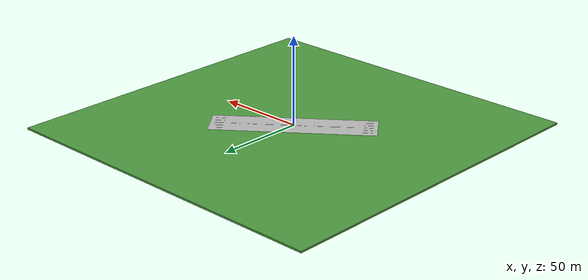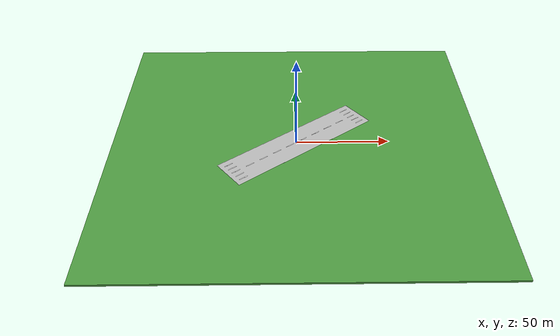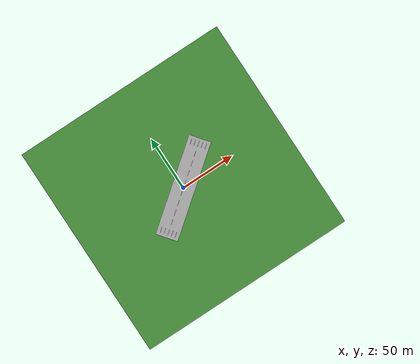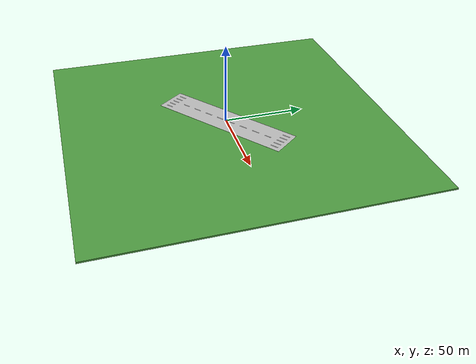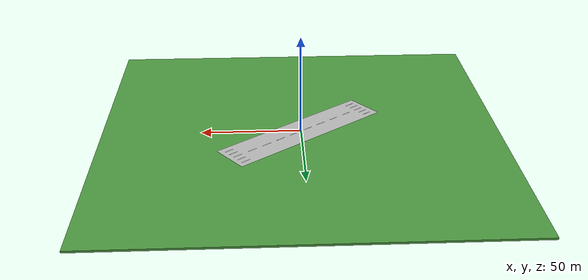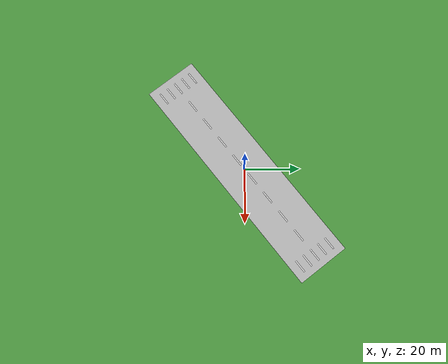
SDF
<?xml version='1.0' ?>
<sdf version='1.6'>
  <world name='default'>
    <light name='sun' type='directional'>
      <cast_shadows>1</cast_shadows>
      <pose>0 0 10 0 0 0</pose>
      <diffuse>0.8 0.8 0.8 1</diffuse>
      <specular>0.1 0.1 0.1 1</specular>
      <attenuation>
        <range>1000</range>
        <constant>0.9</constant>
        <linear>0.01</linear>
        <quadratic>0.001</quadratic>
      </attenuation>
      <direction>-0.5 0.5 -1</direction>
    </light>
    <gravity>0 0 -9.8</gravity>
    <magnetic_field>6e-06 2.3e-05 -4.2e-05</magnetic_field>
    <atmosphere type='adiabatic'/>
    <physics name='default_physics' default='0' type='ode'>
      <max_step_size>0.001</max_step_size>
      <real_time_factor>1</real_time_factor>
      <real_time_update_rate>1000</real_time_update_rate>
    </physics>
    <scene>
      <ambient>0.4 0.4 0.4 1</ambient>
      <background>0.7 0.7 0.7 1</background>
      <shadows>1</shadows>
      <sky>
        <clouds>
          <speed>8</speed>
        </clouds>
      </sky>
      <grid>0</grid>
    </scene>
    <spherical_coordinates>
      <surface_model>EARTH_WGS84</surface_model>
      <latitude_deg>0</latitude_deg>
      <longitude_deg>0</longitude_deg>
      <elevation>0</elevation>
      <heading_deg>0</heading_deg>
    </spherical_coordinates>
    <gui fullscreen='0'>
      <camera name='user_camera'>
        <pose>-8 -24 10 0 0.3 1.3</pose>
        <view_controller>orbit</view_controller>
        <projection_type>perspective</projection_type>
      </camera>
    </gui>
    <include name='kentland'>
      <pose>0 0 0 0 0 0</pose>
      <uri>file://models/kentland</uri>
      <static>1</static>
    </include>
  </world>
</sdf>

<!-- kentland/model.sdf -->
<sdf version='1.6'>
  <model name='kentland'>
    <link name='grass'>
      <pose>0 0 -0.505 0 0 0</pose>
      <inertial>
        <mass>1e+06</mass>
        <inertia>
          <ixx>0.166667</ixx>
          <ixy>0</ixy>
          <ixz>0</ixz>
          <iyy>0.166667</iyy>
          <iyz>0</iyz>
          <izz>0.166667</izz>
        </inertia>
        <pose>0 0 0 0 0 0</pose>
      </inertial>
      <gravity>1</gravity>
      <self_collide>0</self_collide>
      <kinematic>0</kinematic>
      <visual name='visual'>
        <pose>0 0 0 0 0 0</pose>
        <geometry>
          <box>
            <size>200 200 1</size>
          </box>
        </geometry>
        <material>
          <lighting>1</lighting>
          <script>
            <uri>file://models/kentland/materials/scripts</uri>
            <uri>file://models/kentland/materials/textures</uri>
            <name>Kentland/Grass</name>
          </script>
        </material>
        <transparency>0</transparency>
        <cast_shadows>1</cast_shadows>
      </visual>
      <collision name='collision'>
        <laser_retro>0</laser_retro>
        <max_contacts>10</max_contacts>
        <pose>0 0 0 0 0 0</pose>
        <geometry>
          <box>
            <size>200 200 1</size>
          </box>
        </geometry>
        <surface>
          <friction>
            <ode>
              <mu>1</mu>
              <mu2>1</mu2>
              <fdir1>0 0 0</fdir1>
              <slip1>0</slip1>
              <slip2>0</slip2>
            </ode>
            <torsional>
              <coefficient>1</coefficient>
              <patch_radius>0</patch_radius>
              <surface_radius>0</surface_radius>
              <use_patch_radius>1</use_patch_radius>
              <ode>
                <slip>0</slip>
              </ode>
            </torsional>
          </friction>
          <bounce>
            <restitution_coefficient>0</restitution_coefficient>
            <threshold>1e+06</threshold>
          </bounce>
          <contact>
            <collide_without_contact>0</collide_without_contact>
            <collide_without_contact_bitmask>1</collide_without_contact_bitmask>
            <collide_bitmask>1</collide_bitmask>
            <ode>
              <soft_cfm>0</soft_cfm>
              <soft_erp>0.2</soft_erp>
              <kp>1e+13</kp>
              <kd>1</kd>
              <max_vel>0.01</max_vel>
              <min_depth>0</min_depth>
            </ode>
            <bullet>
              <split_impulse>1</split_impulse>
              <split_impulse_penetration_threshold>-0.01</split_impulse_penetration_threshold>
              <soft_cfm>0</soft_cfm>
              <soft_erp>0.2</soft_erp>
              <kp>1e+13</kp>
              <kd>1</kd>
            </bullet>
          </contact>
        </surface>
      </collision>
    </link>
    <include name='air_strip'>
      <pose>0 0 0.0 0 0 -0.9076</pose>
      <uri>file://models/air_strip</uri>
      <static>1</static>
    </include>
    <static>1</static>
    <allow_auto_disable>1</allow_auto_disable>
  </model>
</sdf>

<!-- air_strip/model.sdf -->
<sdf version='1.6'>
  <model name='air_strip'>
    <link name='tarmac'>
      <pose>0 0 -0.5 0 0 0</pose>
      <inertial>
        <mass>1e+06</mass>
        <inertia>
          <ixx>0.166667</ixx>
          <ixy>0</ixy>
          <ixz>0</ixz>
          <iyy>0.166667</iyy>
          <iyz>0</iyz>
          <izz>0.166667</izz>
        </inertia>
        <pose>0 0 0 0 0 0</pose>
      </inertial>
      <gravity>0</gravity>
      <self_collide>0</self_collide>
      <kinematic>0</kinematic>
      <visual name='visual'>
        <pose>0 0 0 0 0 0</pose>
        <geometry>
          <box>
            <size>20 90 1</size>
          </box>
        </geometry>
        <material>
          <lighting>1</lighting>
          <script>
            <uri>file://models/air_strip/materials/scripts</uri>
            <uri>file://models/air_strip/materials/textures</uri>
            <name>AirStrip/Tarmac</name>
          </script>
        </material>
        <transparency>0</transparency>
        <cast_shadows>0</cast_shadows>
      </visual>
      <collision name='collision'>
        <laser_retro>0</laser_retro>
        <max_contacts>10</max_contacts>
        <pose>0 0 0 0 0 0</pose>
        <geometry>
          <box>
            <size>20 90 1</size>
          </box>
        </geometry>
        <surface>
          <friction>
            <ode>
              <mu>1</mu>
              <mu2>1</mu2>
              <fdir1>0 0 0</fdir1>
              <slip1>0</slip1>
              <slip2>0</slip2>
            </ode>
            <torsional>
              <coefficient>1</coefficient>
              <patch_radius>0</patch_radius>
              <surface_radius>0</surface_radius>
              <use_patch_radius>1</use_patch_radius>
              <ode>
                <slip>0</slip>
              </ode>
            </torsional>
          </friction>
          <bounce>
            <restitution_coefficient>0</restitution_coefficient>
            <threshold>1e+06</threshold>
          </bounce>
          <contact>
            <collide_without_contact>0</collide_without_contact>
            <collide_without_contact_bitmask>1</collide_without_contact_bitmask>
            <collide_bitmask>1</collide_bitmask>
            <ode>
              <soft_cfm>0</soft_cfm>
              <soft_erp>0.2</soft_erp>
              <kp>1e+13</kp>
              <kd>1</kd>
              <max_vel>0.01</max_vel>
              <min_depth>0</min_depth>
            </ode>
            <bullet>
              <split_impulse>1</split_impulse>
              <split_impulse_penetration_threshold>-0.01</split_impulse_penetration_threshold>
              <soft_cfm>0</soft_cfm>
              <soft_erp>0.2</soft_erp>
              <kp>1e+13</kp>
              <kd>1</kd>
            </bullet>
          </contact>
        </surface>
      </collision>
    </link>
    <link name='paint_0'>
      <pose>-6.667 40 -0.495 0 0 0</pose>
      <gravity>0</gravity>
      <self_collide>0</self_collide>
      <kinematic>0</kinematic>
      <visual name='visual'>
        <pose>0 0 0 0 0 0</pose>
        <geometry>
          <box>
            <size>0.5 5 1</size>
          </box>
        </geometry>
        <material>
          <lighting>1</lighting>
          <script>
            <uri>file://models/air_strip/materials/scripts</uri>
            <uri>file://models/air_strip/materials/textures</uri>
            <name>AirStrip/WhitePaint</name>
          </script>
        </material>
        <transparency>0</transparency>
        <cast_shadows>0</cast_shadows>
      </visual>
    </link>
    <link name='paint_1'>
      <pose>-3.333 40 -0.495 0 0 0</pose>
      <gravity>0</gravity>
      <self_collide>0</self_collide>
      <kinematic>0</kinematic>
      <visual name='visual'>
        <pose>0 0 0 0 0 0</pose>
        <geometry>
          <box>
            <size>0.5 5 1</size>
          </box>
        </geometry>
        <material>
          <lighting>1</lighting>
          <script>
            <uri>file://models/air_strip/materials/scripts</uri>
            <uri>file://models/air_strip/materials/textures</uri>
            <name>AirStrip/WhitePaint</name>
          </script>
        </material>
        <transparency>0</transparency>
        <cast_shadows>0</cast_shadows>
      </visual>
    </link>
    <link name='paint_2'>
      <pose>0 40 -0.495 0 0 0</pose>
      <gravity>0</gravity>
      <self_collide>0</self_collide>
      <kinematic>0</kinematic>
      <visual name='visual'>
        <pose>0 0 0 0 0 0</pose>
        <geometry>
          <box>
            <size>0.5 5 1</size>
          </box>
        </geometry>
        <material>
          <lighting>1</lighting>
          <script>
            <uri>file://models/air_strip/materials/scripts</uri>
            <uri>file://models/air_strip/materials/textures</uri>
            <name>AirStrip/WhitePaint</name>
          </script>
        </material>
        <transparency>0</transparency>
        <cast_shadows>0</cast_shadows>
      </visual>
    </link>
    <link name='paint_3'>
      <pose>3.333 40 -0.495 0 0 0</pose>
      <gravity>0</gravity>
      <self_collide>0</self_collide>
      <kinematic>0</kinematic>
      <visual name='visual'>
        <pose>0 0 0 0 0 0</pose>
        <geometry>
          <box>
            <size>0.5 5 1</size>
          </box>
        </geometry>
        <material>
          <lighting>1</lighting>
          <script>
            <uri>file://models/air_strip/materials/scripts</uri>
            <uri>file://models/air_strip/materials/textures</uri>
            <name>AirStrip/WhitePaint</name>
          </script>
        </material>
        <transparency>0</transparency>
        <cast_shadows>0</cast_shadows>
      </visual>
    </link>
    <link name='paint_4'>
      <pose>6.667 40 -0.495 0 0 0</pose>
      <gravity>0</gravity>
      <self_collide>0</self_collide>
      <kinematic>0</kinematic>
      <visual name='visual'>
        <pose>0 0 0 0 0 0</pose>
        <geometry>
          <box>
            <size>0.5 5 1</size>
          </box>
        </geometry>
        <material>
          <lighting>1</lighting>
          <script>
            <uri>file://models/air_strip/materials/scripts</uri>
            <uri>file://models/air_strip/materials/textures</uri>
            <name>AirStrip/WhitePaint</name>
          </script>
        </material>
        <transparency>0</transparency>
        <cast_shadows>0</cast_shadows>
      </visual>
    </link>
    <link name='paint_5'>
      <pose>0 31.111 -0.495 0 0 0</pose>
      <gravity>0</gravity>
      <self_collide>0</self_collide>
      <kinematic>0</kinematic>
      <visual name='visual'>
        <pose>0 0 0 0 0 0</pose>
        <geometry>
          <box>
            <size>0.5 5 1</size>
          </box>
        </geometry>
        <material>
          <lighting>1</lighting>
          <script>
            <uri>file://models/air_strip/materials/scripts</uri>
            <uri>file://models/air_strip/materials/textures</uri>
            <name>AirStrip/WhitePaint</name>
          </script>
        </material>
        <transparency>0</transparency>
        <cast_shadows>0</cast_shadows>
      </visual>
    </link>
    <link name='paint_6'>
      <pose>0 22.222 -0.495 0 0 0</pose>
      <gravity>0</gravity>
      <self_collide>0</self_collide>
      <kinematic>0</kinematic>
      <visual name='visual'>
        <pose>0 0 0 0 0 0</pose>
        <geometry>
          <box>
            <size>0.5 5 1</size>
          </box>
        </geometry>
        <material>
          <lighting>1</lighting>
          <script>
            <uri>file://models/air_strip/materials/scripts</uri>
            <uri>file://models/air_strip/materials/textures</uri>
            <name>AirStrip/WhitePaint</name>
          </script>
        </material>
        <transparency>0</transparency>
        <cast_shadows>0</cast_shadows>
      </visual>
    </link>
    <link name='paint_7'>
      <pose>0 13.333 -0.495 0 0 0</pose>
      <gravity>0</gravity>
      <self_collide>0</self_collide>
      <kinematic>0</kinematic>
      <visual name='visual'>
        <pose>0 0 0 0 0 0</pose>
        <geometry>
          <box>
            <size>0.5 5 1</size>
          </box>
        </geometry>
        <material>
          <lighting>1</lighting>
          <script>
            <uri>file://models/air_strip/materials/scripts</uri>
            <uri>file://models/air_strip/materials/textures</uri>
            <name>AirStrip/WhitePaint</name>
          </script>
        </material>
        <transparency>0</transparency>
        <cast_shadows>0</cast_shadows>
      </visual>
    </link>
    <link name='paint_8'>
      <pose>0 4.444 -0.495 0 0 0</pose>
      <gravity>0</gravity>
      <self_collide>0</self_collide>
      <kinematic>0</kinematic>
      <visual name='visual'>
        <pose>0 0 0 0 0 0</pose>
        <geometry>
          <box>
            <size>0.5 5 1</size>
          </box>
        </geometry>
        <material>
          <lighting>1</lighting>
          <script>
            <uri>file://models/air_strip/materials/scripts</uri>
            <uri>file://models/air_strip/materials/textures</uri>
            <name>AirStrip/WhitePaint</name>
          </script>
        </material>
        <transparency>0</transparency>
        <cast_shadows>0</cast_shadows>
      </visual>
    </link>
    <link name='paint_9'>
      <pose>0 -4.444 -0.495 0 0 0</pose>
      <gravity>0</gravity>
      <self_collide>0</self_collide>
      <kinematic>0</kinematic>
      <visual name='visual'>
        <pose>0 0 0 0 0 0</pose>
        <geometry>
          <box>
            <size>0.5 5 1</size>
          </box>
        </geometry>
        <material>
          <lighting>1</lighting>
          <script>
            <uri>file://models/air_strip/materials/scripts</uri>
            <uri>file://models/air_strip/materials/textures</uri>
            <name>AirStrip/WhitePaint</name>
          </script>
        </material>
        <transparency>0</transparency>
        <cast_shadows>0</cast_shadows>
      </visual>
    </link>
    <link name='paint_10'>
      <pose>0 -13.333 -0.495 0 0 0</pose>
      <gravity>0</gravity>
      <self_collide>0</self_collide>
      <kinematic>0</kinematic>
      <visual name='visual'>
        <pose>0 0 0 0 0 0</pose>
        <geometry>
          <box>
            <size>0.5 5 1</size>
          </box>
        </geometry>
        <material>
          <lighting>1</lighting>
          <script>
            <uri>file://models/air_strip/materials/scripts</uri>
            <uri>file://models/air_strip/materials/textures</uri>
            <name>AirStrip/WhitePaint</name>
          </script>
        </material>
        <transparency>0</transparency>
        <cast_shadows>0</cast_shadows>
      </visual>
    </link>
    <link name='paint_11'>
      <pose>0 -22.222 -0.495 0 0 0</pose>
      <gravity>0</gravity>
      <self_collide>0</self_collide>
      <kinematic>0</kinematic>
      <visual name='visual'>
        <pose>0 0 0 0 0 0</pose>
        <geometry>
          <box>
            <size>0.5 5 1</size>
          </box>
        </geometry>
        <material>
          <lighting>1</lighting>
          <script>
            <uri>file://models/air_strip/materials/scripts</uri>
            <uri>file://models/air_strip/materials/textures</uri>
            <name>AirStrip/WhitePaint</name>
          </script>
        </material>
        <transparency>0</transparency>
        <cast_shadows>0</cast_shadows>
      </visual>
    </link>
    <link name='paint_12'>
      <pose>0 -31.111 -0.495 0 0 0</pose>
      <gravity>0</gravity>
      <self_collide>0</self_collide>
      <kinematic>0</kinematic>
      <visual name='visual'>
        <pose>0 0 0 0 0 0</pose>
        <geometry>
          <box>
            <size>0.5 5 1</size>
          </box>
        </geometry>
        <material>
          <lighting>1</lighting>
          <script>
            <uri>file://models/air_strip/materials/scripts</uri>
            <uri>file://models/air_strip/materials/textures</uri>
            <name>AirStrip/WhitePaint</name>
          </script>
        </material>
        <transparency>0</transparency>
        <cast_shadows>0</cast_shadows>
      </visual>
    </link>
    <link name='paint_13'>
      <pose>-6.667 -40 -0.495 0 0 0</pose>
      <gravity>0</gravity>
      <self_collide>0</self_collide>
      <kinematic>0</kinematic>
      <visual name='visual'>
        <pose>0 0 0 0 0 0</pose>
        <geometry>
          <box>
            <size>0.5 5 1</size>
          </box>
        </geometry>
        <material>
          <lighting>1</lighting>
          <script>
            <uri>file://models/air_strip/materials/scripts</uri>
            <uri>file://models/air_strip/materials/textures</uri>
            <name>AirStrip/WhitePaint</name>
          </script>
        </material>
        <transparency>0</transparency>
        <cast_shadows>0</cast_shadows>
      </visual>
    </link>
    <link name='paint_14'>
      <pose>-3.333 -40 -0.495 0 0 0</pose>
      <gravity>0</gravity>
      <self_collide>0</self_collide>
      <kinematic>0</kinematic>
      <visual name='visual'>
        <pose>0 0 0 0 0 0</pose>
        <geometry>
          <box>
            <size>0.5 5 1</size>
          </box>
        </geometry>
        <material>
          <lighting>1</lighting>
          <script>
            <uri>file://models/air_strip/materials/scripts</uri>
            <uri>file://models/air_strip/materials/textures</uri>
            <name>AirStrip/WhitePaint</name>
          </script>
        </material>
        <transparency>0</transparency>
        <cast_shadows>0</cast_shadows>
      </visual>
    </link>
    <link name='paint_15'>
      <pose>0 -40 -0.495 0 0 0</pose>
      <gravity>0</gravity>
      <self_collide>0</self_collide>
      <kinematic>0</kinematic>
      <visual name='visual'>
        <pose>0 0 0 0 0 0</pose>
        <geometry>
          <box>
            <size>0.5 5 1</size>
          </box>
        </geometry>
        <material>
          <lighting>1</lighting>
          <script>
            <uri>file://models/air_strip/materials/scripts</uri>
            <uri>file://models/air_strip/materials/textures</uri>
            <name>AirStrip/WhitePaint</name>
          </script>
        </material>
        <transparency>0</transparency>
        <cast_shadows>0</cast_shadows>
      </visual>
    </link>
    <link name='paint_16'>
      <pose>3.333 -40 -0.495 0 0 0</pose>
      <gravity>0</gravity>
      <self_collide>0</self_collide>
      <kinematic>0</kinematic>
      <visual name='visual'>
        <pose>0 0 0 0 0 0</pose>
        <geometry>
          <box>
            <size>0.5 5 1</size>
          </box>
        </geometry>
        <material>
          <lighting>1</lighting>
          <script>
            <uri>file://models/air_strip/materials/scripts</uri>
            <uri>file://models/air_strip/materials/textures</uri>
            <name>AirStrip/WhitePaint</name>
          </script>
        </material>
        <transparency>0</transparency>
        <cast_shadows>0</cast_shadows>
      </visual>
    </link>
    <link name='paint_17'>
      <pose>6.667 -40 -0.495 0 0 0</pose>
      <gravity>0</gravity>
      <self_collide>0</self_collide>
      <kinematic>0</kinematic>
      <visual name='visual'>
        <pose>0 0 0 0 0 0</pose>
        <geometry>
          <box>
            <size>0.5 5 1</size>
          </box>
        </geometry>
        <material>
          <lighting>1</lighting>
          <script>
            <uri>file://models/air_strip/materials/scripts</uri>
            <uri>file://models/air_strip/materials/textures</uri>
            <name>AirStrip/WhitePaint</name>
          </script>
        </material>
        <transparency>0</transparency>
        <cast_shadows>0</cast_shadows>
      </visual>
    </link>
    <joint name='tarmac_joint_0' type='fixed'>
      <parent>tarmac</parent>
      <child>paint_0</child>
      <pose>0 0 0 0 0 0</pose>
    </joint>
    <joint name='tarmac_joint_1' type='fixed'>
      <parent>tarmac</parent>
      <child>paint_1</child>
      <pose>0 0 0 0 0 0</pose>
    </joint>
    <joint name='tarmac_joint_2' type='fixed'>
      <parent>tarmac</parent>
      <child>paint_2</child>
      <pose>0 0 0 0 0 0</pose>
    </joint>
    <joint name='tarmac_joint_3' type='fixed'>
      <parent>tarmac</parent>
      <child>paint_3</child>
      <pose>0 0 0 0 0 0</pose>
    </joint>
    <joint name='tarmac_joint_4' type='fixed'>
      <parent>tarmac</parent>
      <child>paint_4</child>
      <pose>0 0 0 0 0 0</pose>
    </joint>
    <joint name='tarmac_joint_5' type='fixed'>
      <parent>tarmac</parent>
      <child>paint_5</child>
      <pose>0 0 0 0 0 0</pose>
    </joint>
    <joint name='tarmac_joint_6' type='fixed'>
      <parent>tarmac</parent>
      <child>paint_6</child>
      <pose>0 0 0 0 0 0</pose>
    </joint>
    <joint name='tarmac_joint_7' type='fixed'>
      <parent>tarmac</parent>
      <child>paint_7</child>
      <pose>0 0 0 0 0 0</pose>
    </joint>
    <joint name='tarmac_joint_8' type='fixed'>
      <parent>tarmac</parent>
      <child>paint_8</child>
      <pose>0 0 0 0 0 0</pose>
    </joint>
    <joint name='tarmac_joint_9' type='fixed'>
      <parent>tarmac</parent>
      <child>paint_9</child>
      <pose>0 0 0 0 0 0</pose>
    </joint>
    <joint name='tarmac_joint_10' type='fixed'>
      <parent>tarmac</parent>
      <child>paint_10</child>
      <pose>0 0 0 0 0 0</pose>
    </joint>
    <joint name='tarmac_joint_11' type='fixed'>
      <parent>tarmac</parent>
      <child>paint_11</child>
      <pose>0 0 0 0 0 0</pose>
    </joint>
    <joint name='tarmac_joint_12' type='fixed'>
      <parent>tarmac</parent>
      <child>paint_12</child>
      <pose>0 0 0 0 0 0</pose>
    </joint>
    <joint name='tarmac_joint_13' type='fixed'>
      <parent>tarmac</parent>
      <child>paint_13</child>
      <pose>0 0 0 0 0 0</pose>
    </joint>
    <joint name='tarmac_joint_14' type='fixed'>
      <parent>tarmac</parent>
      <child>paint_14</child>
      <pose>0 0 0 0 0 0</pose>
    </joint>
    <joint name='tarmac_joint_15' type='fixed'>
      <parent>tarmac</parent>
      <child>paint_15</child>
      <pose>0 0 0 0 0 0</pose>
    </joint>
    <joint name='tarmac_joint_16' type='fixed'>
      <parent>tarmac</parent>
      <child>paint_16</child>
      <pose>0 0 0 0 0 0</pose>
    </joint>
    <joint name='tarmac_joint_17' type='fixed'>
      <parent>tarmac</parent>
      <child>paint_17</child>
      <pose>0 0 0 0 0 0</pose>
    </joint>
    <static>1</static>
    <allow_auto_disable>1</allow_auto_disable>
  </model>
</sdf>
